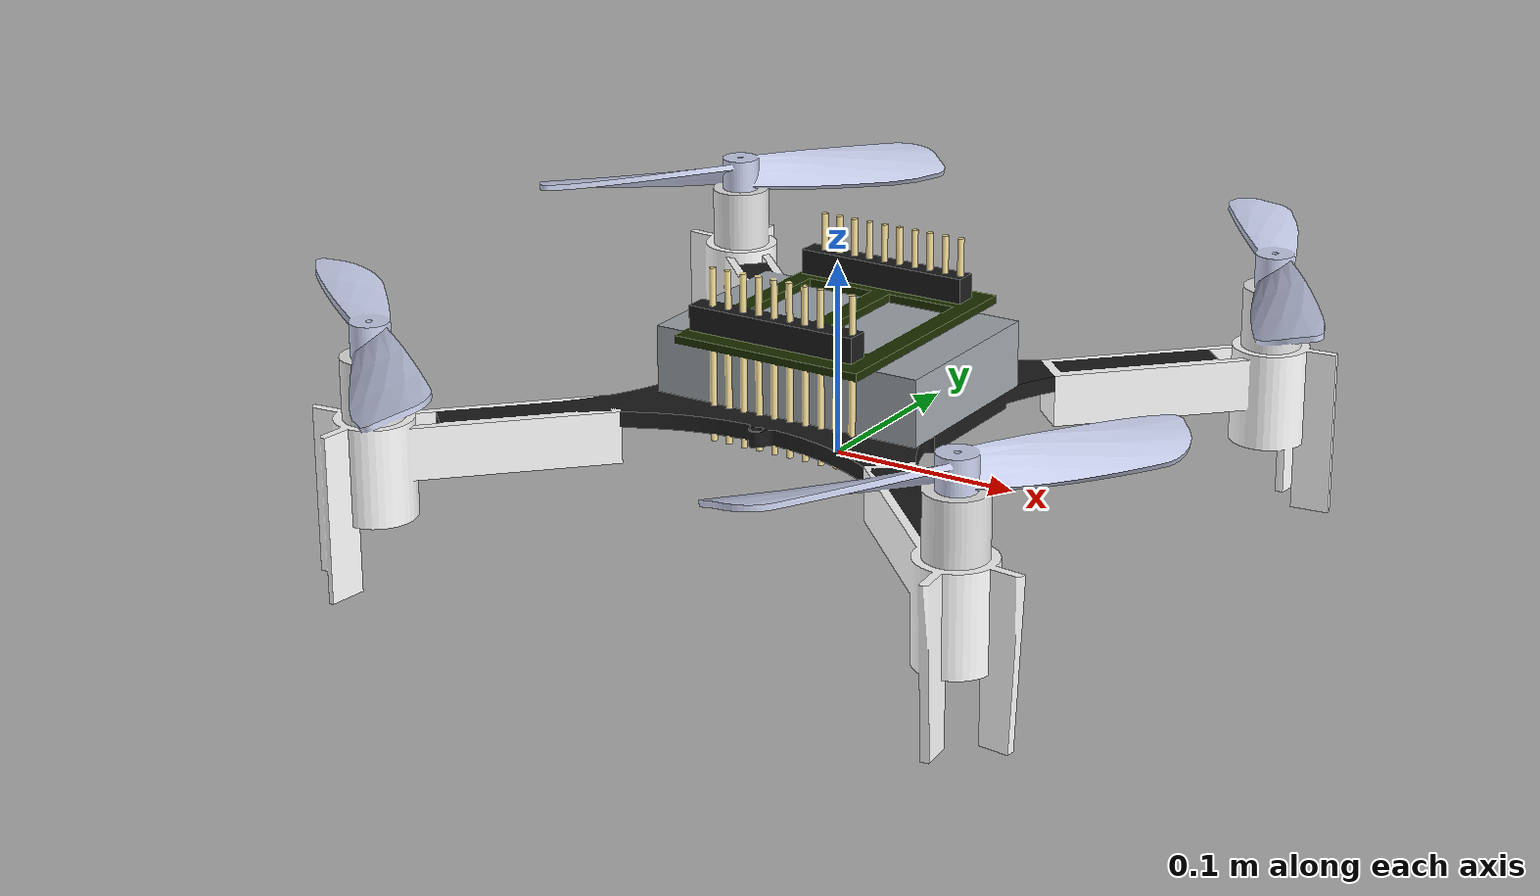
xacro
<?xml version="1.0"?>
<robot name="crazyflie_with_camera" xmlns:xacro="http://www.ros.org/wiki/xacro">
  <xacro:include filename="crazyflie2.base.urdf.xacro"/>

  <xacro:property name="camera_x" value="0.027" />
  <xacro:property name="camera_z" value="0.023" />

  <xacro:crazyflie2/>

  <link name="${tf_prefix}camera_link"/>

  <link name="${tf_prefix}camera_optical_link"/>

  <joint name="${tf_prefix}camera_joint" type="fixed">
    <origin xyz="${camera_x} 0 ${camera_z}" rpy="0 0 0" />
    <parent link="${tf_prefix}base_link"/>
    <child link="${tf_prefix}camera_link" />
  </joint>

  <joint name="${tf_prefix}camera_optical_join" type="fixed">
    <origin xyz="0 0 0" rpy="${-pi/2} 0 ${-pi/2}"/>
    <parent link="${tf_prefix}camera_link" />
    <child link="${tf_prefix}camera_optical_link" />
  </joint>

</robot>

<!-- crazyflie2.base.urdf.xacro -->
<robot xmlns:xacro="http://www.ros.org/wiki/xacro" name="crazyflie2">

  <xacro:property name="camera_x" value="0.027" />
  <xacro:property name="camera_z" value="0.023" />
  <xacro:arg name="name" default=""/>
  <xacro:property name="_name" value="$(arg name)"/>
  <xacro:if value="${_name != ''}">
    <xacro:property name="tf_prefix" value="${_name}/"/>
  </xacro:if>
  <xacro:if value="${_name == ''}">
    <xacro:property name="tf_prefix" value=""/>
  </xacro:if>

  <xacro:property name="rotor_drag_coefficient" value="1.8580e-05"/>
  <xacro:property name="moment_constant" value="0.005"/>

  <xacro:macro name="crazyflie2">

  <link name="${tf_prefix}base_link">
      <!-- Refer to page 39 in http://groups.csail.mit.edu/robotics-center/public_papers/Landry15.pdf -->
      <!-- In Kg m^2 -->

    <visual>
      <origin xyz="0 0 0.013" rpy="0 0 0" />
      <geometry>
        <mesh filename="package://crazyflie_description/meshes/crazyflie2.dae"/>
      </geometry>
    </visual>

    <!-- ToDo: insert collision model -->

  </link>

</xacro:macro>

</robot>
